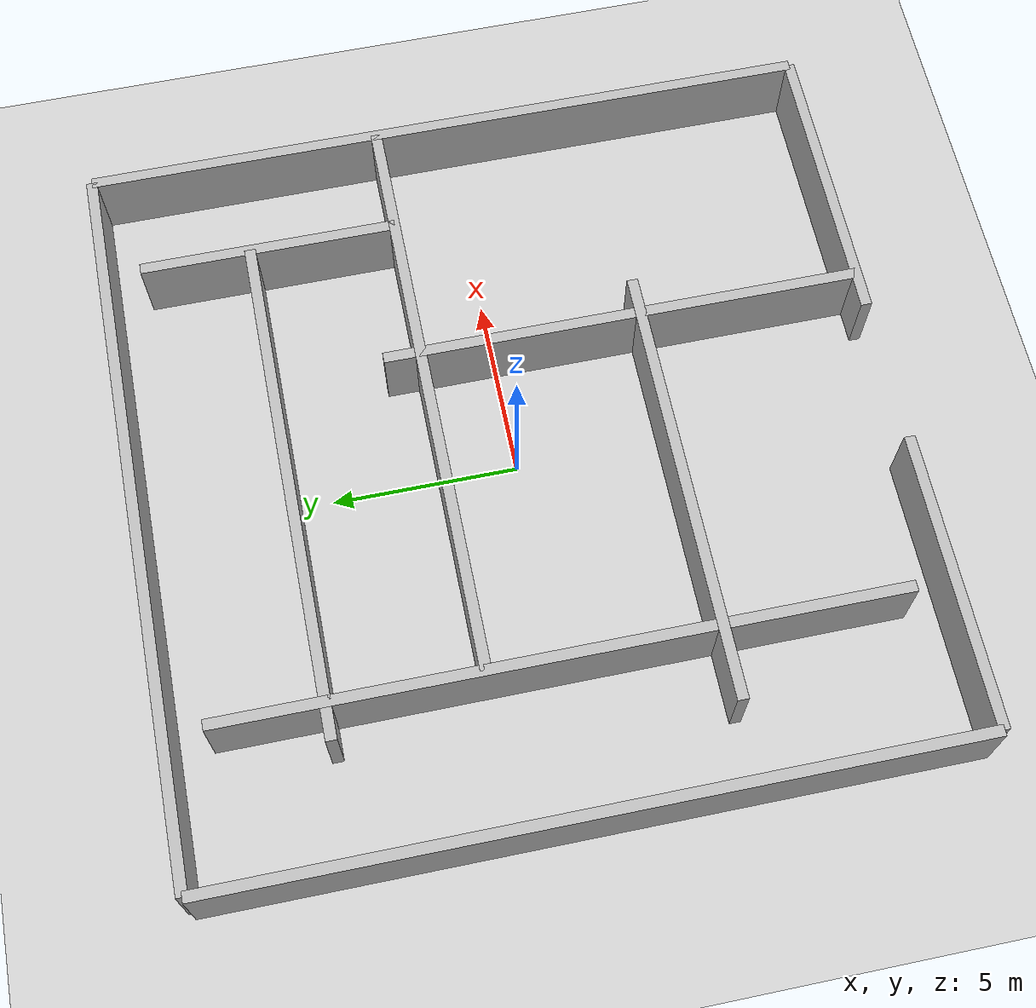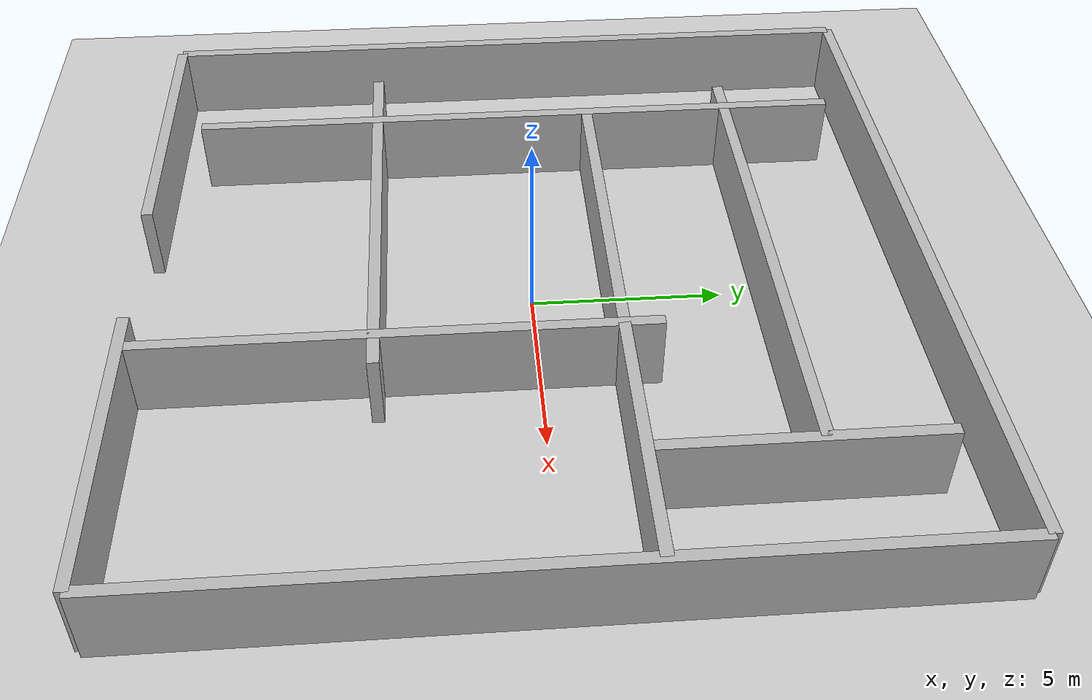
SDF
<?xml version="1.0"?>
<sdf version="1.6">
  <world name="maze_big">
    <include><uri>model://ground_plane</uri></include>
    <include><uri>model://sun</uri></include>

    <!-- حدود 20x20 م مع فتحة دخول بالأسفل -->
    <model name="wall_top"><pose>0 10 1 0 0 0</pose><link name="l">
      <collision name="c"><geometry><box><size>20 0.3 2</size></box></geometry></collision>
      <visual name="v"><geometry><box><size>20 0.3 2</size></box></geometry></visual>
    </link><static>true</static></model>
    <model name="wall_left"><pose>-10 0 1 0 0 0</pose><link name="l">
      <collision name="c"><geometry><box><size>0.3 20 2</size></box></geometry></collision>
      <visual name="v"><geometry><box><size>0.3 20 2</size></box></geometry></visual>
    </link><static>true</static></model>
    <model name="wall_right"><pose>10 0 1 0 0 0</pose><link name="l">
      <collision name="c"><geometry><box><size>0.3 20 2</size></box></geometry></collision>
      <visual name="v"><geometry><box><size>0.3 20 2</size></box></geometry></visual>
    </link><static>true</static></model>
    <!-- أسفل: مقطعين لترك فتحة 4م كمدخل -->
    <model name="wall_bottom_left"><pose>-6 -10 1 0 0 0</pose><link name="l">
      <collision name="c"><geometry><box><size>8 0.3 2</size></box></geometry></collision>
      <visual name="v"><geometry><box><size>8 0.3 2</size></box></geometry></visual>
    </link><static>true</static></model>
    <model name="wall_bottom_right"><pose>6 -10 1 0 0 0</pose><link name="l">
      <collision name="c"><geometry><box><size>8 0.3 2</size></box></geometry></collision>
      <visual name="v"><geometry><box><size>8 0.3 2</size></box></geometry></visual>
    </link><static>true</static></model>

    <!-- جدران داخلية -->
    <model name="w1"><pose>-6 0 1 0 0 0</pose><link name="l">
      <collision name="c"><geometry><box><size>0.3 18 2</size></box></geometry></collision>
      <visual name="v"><geometry><box><size>0.3 18 2</size></box></geometry></visual>
    </link><static>true</static></model>
    <model name="w2"><pose>0 6 1 0 0 0</pose><link name="l">
      <collision name="c"><geometry><box><size>14 0.3 2</size></box></geometry></collision>
      <visual name="v"><geometry><box><size>14 0.3 2</size></box></geometry></visual>
    </link><static>true</static></model>
    <model name="w3"><pose>3 -3.5 1 0 0 0</pose><link name="l">
      <collision name="c"><geometry><box><size>0.3 13 2</size></box></geometry></collision>
      <visual name="v"><geometry><box><size>0.3 13 2</size></box></geometry></visual>
    </link><static>true</static></model>
    <model name="w4"><pose>2 2 1 0 0 0</pose><link name="l">
      <collision name="c"><geometry><box><size>16 0.3 2</size></box></geometry></collision>
      <visual name="v"><geometry><box><size>16 0.3 2</size></box></geometry></visual>
    </link><static>true</static></model>
    <model name="w5"><pose>-2 -4 1 0 0 0</pose><link name="l">
      <collision name="c"><geometry><box><size>12 0.3 2</size></box></geometry></collision>
      <visual name="v"><geometry><box><size>12 0.3 2</size></box></geometry></visual>
    </link><static>true</static></model>
    <model name="w6"><pose>7 5.5 1 0 0 0</pose><link name="l">
      <collision name="c"><geometry><box><size>0.3 7 2</size></box></geometry></collision>
      <visual name="v"><geometry><box><size>0.3 7 2</size></box></geometry></visual>
    </link><static>true</static></model>
  </world>
</sdf>
